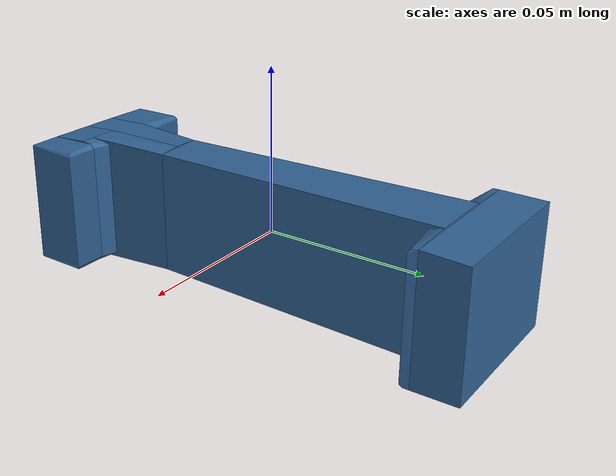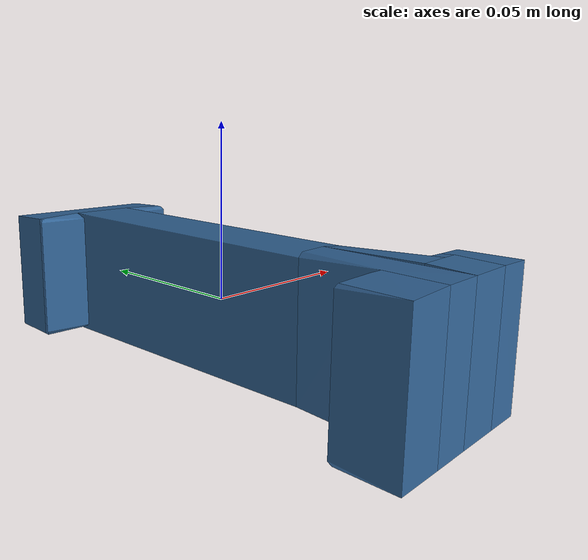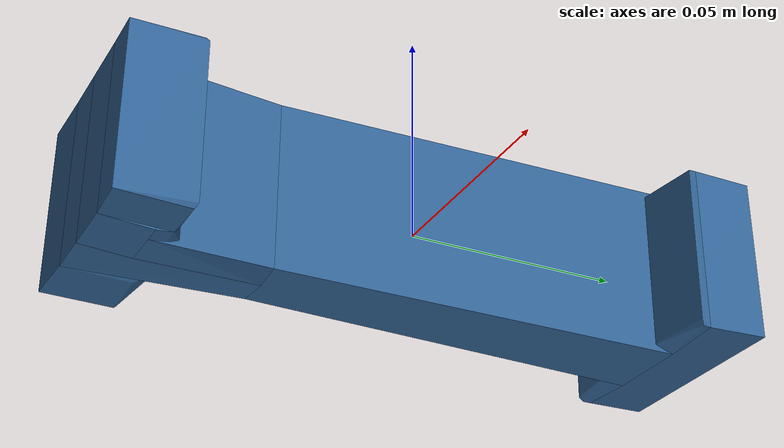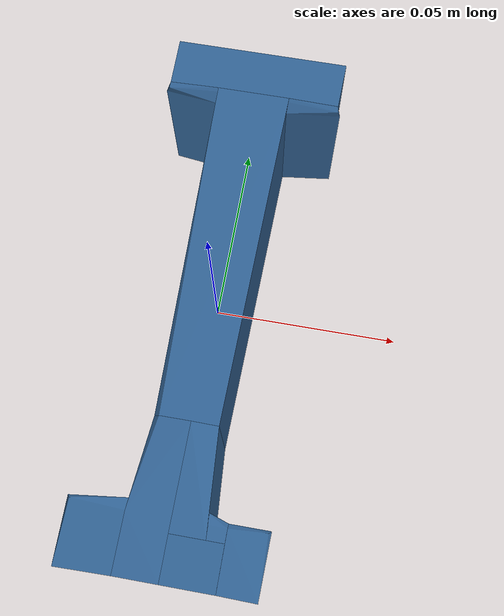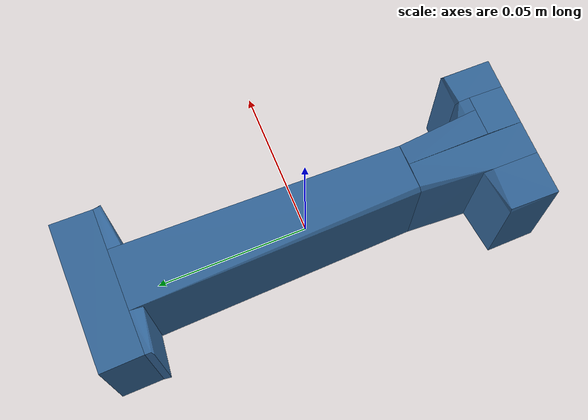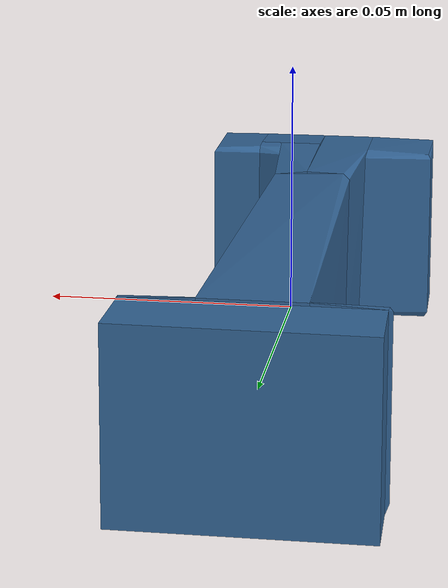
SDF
<?xml version='1.0' encoding='UTF-8'?>
<!-- This SDF was autogenerated by obj_to_drake_sdf.py -->
<sdf version="1.7">
  <model name="I_centered">
    <link name="I_centered">
      <inertial>
        <pose>0 0 0 0 0 0</pose>
        <mass>0.05</mass>
        <inertia>
          <ixx>0.00013685199</ixx>
          <iyy>1.2051644e-05</iyy>
          <izz>0.00013577877</izz>
          <ixy>-2.5314408e-15</ixy>
          <ixz>-5.6212349e-17</ixz>
          <iyz>-2.7837032e-18</iyz>
        </inertia>
      </inertial>
      <visual name="convex_0">
        <pose>0 0 0 0 0 0</pose>
        <geometry>
          <mesh>
            <uri>I_centered_convex_0.obj</uri>
          </mesh>
        </geometry>
        <material>
          <diffuse>0.19607843137254902 0.39215686274509803 0.5882352941176471 1</diffuse>
        </material>
      </visual>
      <collision name="convex_0_volume">
        <pose>0 0 0 0 0 0</pose>
        <geometry>
          <mesh>
            <uri>I_centered_convex_0.obj</uri>
          </mesh>
        </geometry>
        <drake:proximity_properties xmlns:drake="uri:drake">
          <drake:compliant_hydroelastic/>
          <drake:hydroelastic_modulus> 3.0e7 </drake:hydroelastic_modulus>
          <drake:mesh_resolution_hint> 0.02 </drake:mesh_resolution_hint>
          <drake:hunt_crossley_dissipation>10</drake:hunt_crossley_dissipation>
          <drake:mu_dynamic>0.3</drake:mu_dynamic>
        </drake:proximity_properties>
      </collision>
      <visual name="convex_1">
        <pose>0 0 0 0 0 0</pose>
        <geometry>
          <mesh>
            <uri>I_centered_convex_1.obj</uri>
          </mesh>
        </geometry>
        <material>
          <diffuse>0.19607843137254902 0.39215686274509803 0.5882352941176471 1</diffuse>
        </material>
      </visual>
      <collision name="convex_1_volume">
        <pose>0 0 0 0 0 0</pose>
        <geometry>
          <mesh>
            <uri>I_centered_convex_1.obj</uri>
          </mesh>
        </geometry>
        <drake:proximity_properties xmlns:drake="uri:drake">
          <drake:compliant_hydroelastic/>
          <drake:hydroelastic_modulus> 3.0e7 </drake:hydroelastic_modulus>
          <drake:mesh_resolution_hint> 0.02 </drake:mesh_resolution_hint>
          <drake:hunt_crossley_dissipation>10</drake:hunt_crossley_dissipation>
          <drake:mu_dynamic>0.3</drake:mu_dynamic>
        </drake:proximity_properties>
      </collision>
      <visual name="convex_2">
        <pose>0 0 0 0 0 0</pose>
        <geometry>
          <mesh>
            <uri>I_centered_convex_2.obj</uri>
          </mesh>
        </geometry>
        <material>
          <diffuse>0.19607843137254902 0.39215686274509803 0.5882352941176471 1</diffuse>
        </material>
      </visual>
      <collision name="convex_2_volume">
        <pose>0 0 0 0 0 0</pose>
        <geometry>
          <mesh>
            <uri>I_centered_convex_2.obj</uri>
          </mesh>
        </geometry>
        <drake:proximity_properties xmlns:drake="uri:drake">
          <drake:compliant_hydroelastic/>
          <drake:hydroelastic_modulus> 3.0e7 </drake:hydroelastic_modulus>
          <drake:mesh_resolution_hint> 0.02 </drake:mesh_resolution_hint>
          <drake:hunt_crossley_dissipation>10</drake:hunt_crossley_dissipation>
          <drake:mu_dynamic>0.3</drake:mu_dynamic>
        </drake:proximity_properties>
      </collision>
      <visual name="convex_3">
        <pose>0 0 0 0 0 0</pose>
        <geometry>
          <mesh>
            <uri>I_centered_convex_3.obj</uri>
          </mesh>
        </geometry>
        <material>
          <diffuse>0.19607843137254902 0.39215686274509803 0.5882352941176471 1</diffuse>
        </material>
      </visual>
      <collision name="convex_3_volume">
        <pose>0 0 0 0 0 0</pose>
        <geometry>
          <mesh>
            <uri>I_centered_convex_3.obj</uri>
          </mesh>
        </geometry>
        <drake:proximity_properties xmlns:drake="uri:drake">
          <drake:compliant_hydroelastic/>
          <drake:hydroelastic_modulus> 3.0e7 </drake:hydroelastic_modulus>
          <drake:mesh_resolution_hint> 0.02 </drake:mesh_resolution_hint>
          <drake:hunt_crossley_dissipation>10</drake:hunt_crossley_dissipation>
          <drake:mu_dynamic>0.3</drake:mu_dynamic>
        </drake:proximity_properties>
      </collision>
      <visual name="convex_4">
        <pose>0 0 0 0 0 0</pose>
        <geometry>
          <mesh>
            <uri>I_centered_convex_4.obj</uri>
          </mesh>
        </geometry>
        <material>
          <diffuse>0.19607843137254902 0.39215686274509803 0.5882352941176471 1</diffuse>
        </material>
      </visual>
      <collision name="convex_4_volume">
        <pose>0 0 0 0 0 0</pose>
        <geometry>
          <mesh>
            <uri>I_centered_convex_4.obj</uri>
          </mesh>
        </geometry>
        <drake:proximity_properties xmlns:drake="uri:drake">
          <drake:compliant_hydroelastic/>
          <drake:hydroelastic_modulus> 3.0e7 </drake:hydroelastic_modulus>
          <drake:mesh_resolution_hint> 0.02 </drake:mesh_resolution_hint>
          <drake:hunt_crossley_dissipation>10</drake:hunt_crossley_dissipation>
          <drake:mu_dynamic>0.3</drake:mu_dynamic>
        </drake:proximity_properties>
      </collision>
      <visual name="convex_5">
        <pose>0 0 0 0 0 0</pose>
        <geometry>
          <mesh>
            <uri>I_centered_convex_5.obj</uri>
          </mesh>
        </geometry>
        <material>
          <diffuse>0.19607843137254902 0.39215686274509803 0.5882352941176471 1</diffuse>
        </material>
      </visual>
      <collision name="convex_5_volume">
        <pose>0 0 0 0 0 0</pose>
        <geometry>
          <mesh>
            <uri>I_centered_convex_5.obj</uri>
          </mesh>
        </geometry>
        <drake:proximity_properties xmlns:drake="uri:drake">
          <drake:compliant_hydroelastic/>
          <drake:hydroelastic_modulus> 3.0e7 </drake:hydroelastic_modulus>
          <drake:mesh_resolution_hint> 0.02 </drake:mesh_resolution_hint>
          <drake:hunt_crossley_dissipation>10</drake:hunt_crossley_dissipation>
          <drake:mu_dynamic>0.3</drake:mu_dynamic>
        </drake:proximity_properties>
      </collision>
      <visual name="convex_6">
        <pose>0 0 0 0 0 0</pose>
        <geometry>
          <mesh>
            <uri>I_centered_convex_6.obj</uri>
          </mesh>
        </geometry>
        <material>
          <diffuse>0.19607843137254902 0.39215686274509803 0.5882352941176471 1</diffuse>
        </material>
      </visual>
      <collision name="convex_6_volume">
        <pose>0 0 0 0 0 0</pose>
        <geometry>
          <mesh>
            <uri>I_centered_convex_6.obj</uri>
          </mesh>
        </geometry>
        <drake:proximity_properties xmlns:drake="uri:drake">
          <drake:compliant_hydroelastic/>
          <drake:hydroelastic_modulus> 3.0e7 </drake:hydroelastic_modulus>
          <drake:mesh_resolution_hint> 0.02 </drake:mesh_resolution_hint>
          <drake:hunt_crossley_dissipation>10</drake:hunt_crossley_dissipation>
          <drake:mu_dynamic>0.3</drake:mu_dynamic>
        </drake:proximity_properties>
      </collision>
      <visual name="convex_7">
        <pose>0 0 0 0 0 0</pose>
        <geometry>
          <mesh>
            <uri>I_centered_convex_7.obj</uri>
          </mesh>
        </geometry>
        <material>
          <diffuse>0.19607843137254902 0.39215686274509803 0.5882352941176471 1</diffuse>
        </material>
      </visual>
      <collision name="convex_7_volume">
        <pose>0 0 0 0 0 0</pose>
        <geometry>
          <mesh>
            <uri>I_centered_convex_7.obj</uri>
          </mesh>
        </geometry>
        <drake:proximity_properties xmlns:drake="uri:drake">
          <drake:compliant_hydroelastic/>
          <drake:hydroelastic_modulus> 3.0e7 </drake:hydroelastic_modulus>
          <drake:mesh_resolution_hint> 0.02 </drake:mesh_resolution_hint>
          <drake:hunt_crossley_dissipation>10</drake:hunt_crossley_dissipation>
          <drake:mu_dynamic>0.3</drake:mu_dynamic>
        </drake:proximity_properties>
      </collision>
      <visual name="convex_8">
        <pose>0 0 0 0 0 0</pose>
        <geometry>
          <mesh>
            <uri>I_centered_convex_8.obj</uri>
          </mesh>
        </geometry>
        <material>
          <diffuse>0.19607843137254902 0.39215686274509803 0.5882352941176471 1</diffuse>
        </material>
      </visual>
      <collision name="convex_8_volume">
        <pose>0 0 0 0 0 0</pose>
        <geometry>
          <mesh>
            <uri>I_centered_convex_8.obj</uri>
          </mesh>
        </geometry>
        <drake:proximity_properties xmlns:drake="uri:drake">
          <drake:compliant_hydroelastic/>
          <drake:hydroelastic_modulus> 3.0e7 </drake:hydroelastic_modulus>
          <drake:mesh_resolution_hint> 0.02 </drake:mesh_resolution_hint>
          <drake:hunt_crossley_dissipation>10</drake:hunt_crossley_dissipation>
          <drake:mu_dynamic>0.3</drake:mu_dynamic>
        </drake:proximity_properties>
      </collision>
      <visual name="convex_9">
        <pose>0 0 0 0 0 0</pose>
        <geometry>
          <mesh>
            <uri>I_centered_convex_9.obj</uri>
          </mesh>
        </geometry>
        <material>
          <diffuse>0.19607843137254902 0.39215686274509803 0.5882352941176471 1</diffuse>
        </material>
      </visual>
      <collision name="convex_9_volume">
        <pose>0 0 0 0 0 0</pose>
        <geometry>
          <mesh>
            <uri>I_centered_convex_9.obj</uri>
          </mesh>
        </geometry>
        <drake:proximity_properties xmlns:drake="uri:drake">
          <drake:compliant_hydroelastic/>
          <drake:hydroelastic_modulus> 3.0e7 </drake:hydroelastic_modulus>
          <drake:mesh_resolution_hint> 0.02 </drake:mesh_resolution_hint>
          <drake:hunt_crossley_dissipation>10</drake:hunt_crossley_dissipation>
          <drake:mu_dynamic>0.3</drake:mu_dynamic>
        </drake:proximity_properties>
      </collision>
    </link>
  </model>
</sdf>
